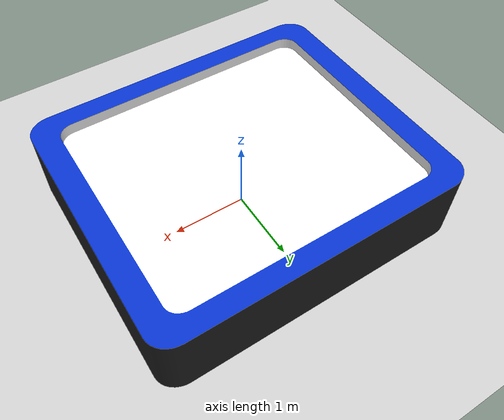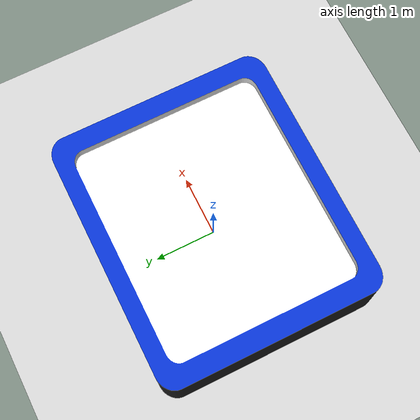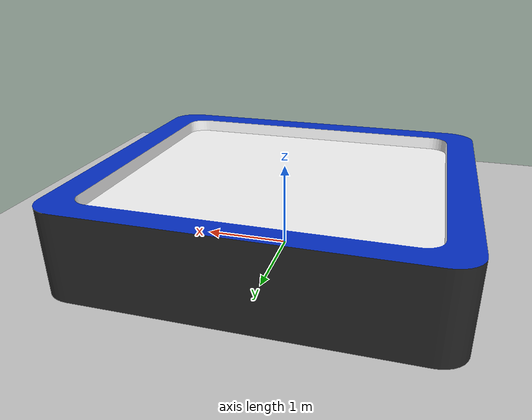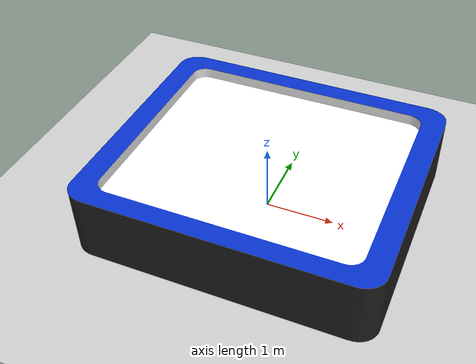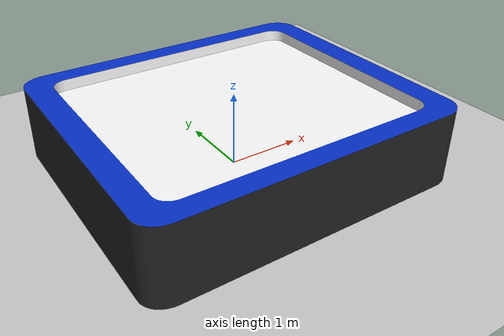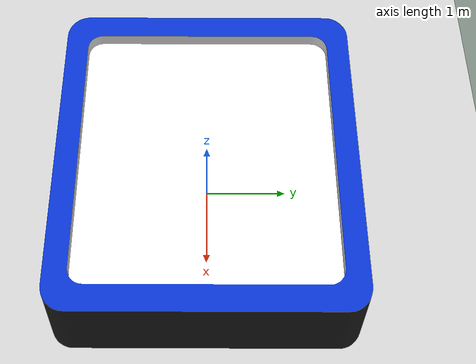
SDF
<?xml version="1.0"?>
<sdf version="1.7">
  <world name="default">

    <include>
      <uri>model://ground_plane</uri>
    </include>

    <include>
      <uri>model://sun</uri>
    </include>

    <scene>
      <shadows>false</shadows>
    </scene>

    <gui fullscreen='0'>
      <camera name='user_camera'>
        <pose frame=''>0.319654 -0.235002 9.29441 0 1.5138 0.009599</pose>
        <view_controller>orbit</view_controller>
        <projection_type>perspective</projection_type>
      </camera>
    </gui>

    <physics type="ode">
      <real_time_update_rate>1000.0</real_time_update_rate>
      <max_step_size>0.001</max_step_size>
      <real_time_factor>1</real_time_factor>
      <ode>
        <solver>
          <type>quick</type>
          <iters>150</iters>
          <precon_iters>0</precon_iters>
          <sor>1.400000</sor>
          <use_dynamic_moi_rescaling>1</use_dynamic_moi_rescaling>
        </solver>
        <constraints>
          <cfm>0.00001</cfm>
          <erp>0.2</erp>
          <contact_max_correcting_vel>2000.000000</contact_max_correcting_vel>
          <contact_surface_layer>0.01000</contact_surface_layer>
        </constraints>
      </ode>
    </physics>

    <model name='robotarium_arena'>
      <static>true</static>
      <include>
        <uri>model://robotarium</uri>
      </include>
    </model>

  </world>
</sdf>

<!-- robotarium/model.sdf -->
<sdf version="1.7">
  <model name="robotarium">
    <static>true</static>
    <pose>0 0 0 0 0 0</pose>
    <link name="link">
      <collision name="collision">
        <geometry>
          <mesh>
            <uri>model:///robotarium/meshes/robotarium.dae</uri>
            <scale>1.0 1.0 1.0</scale>
          </mesh>
        </geometry>
      </collision>
      <visual name="visual">
        <geometry>
          <mesh>
            <uri>model://robotarium/meshes/robotarium.dae</uri>
            <scale>1.0 1.0 1.0</scale>
          </mesh>
        </geometry>
      </visual>
    </link>
  </model>
</sdf>
